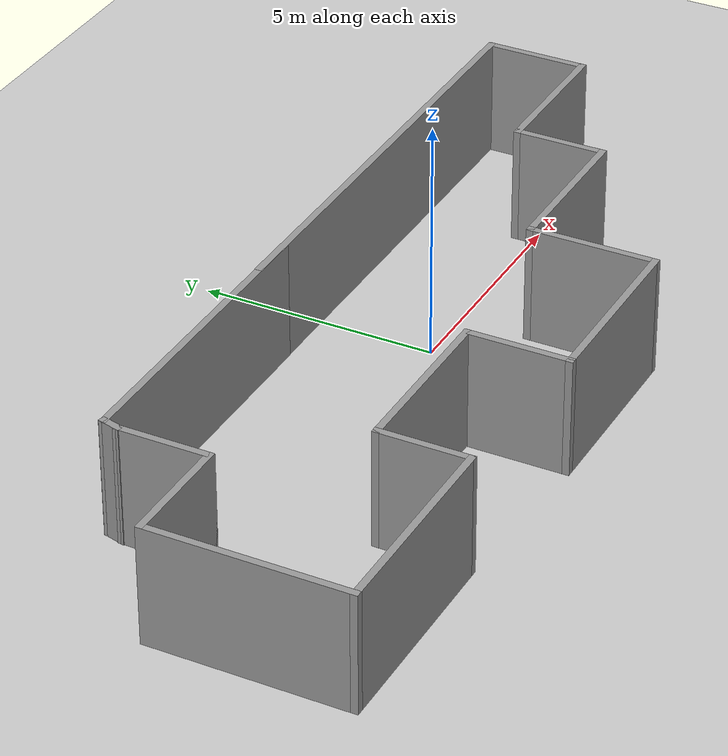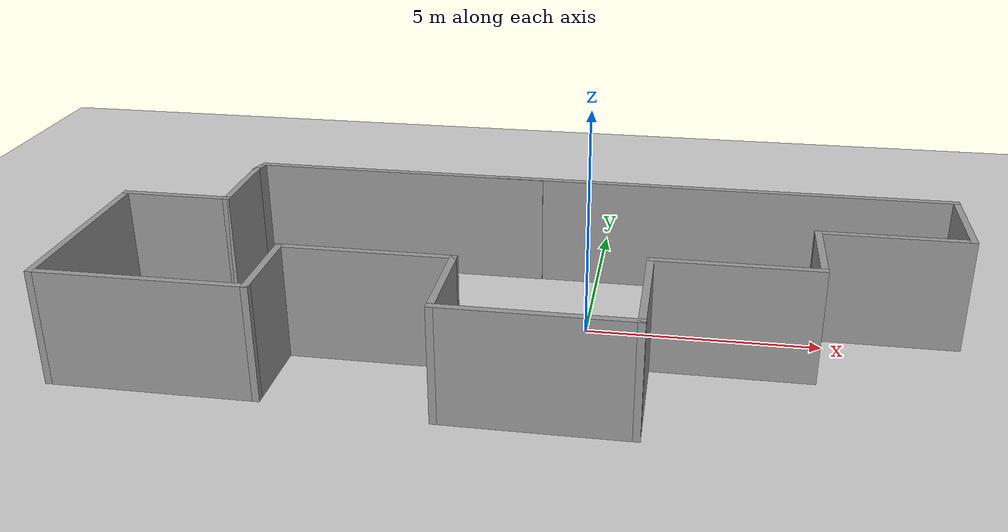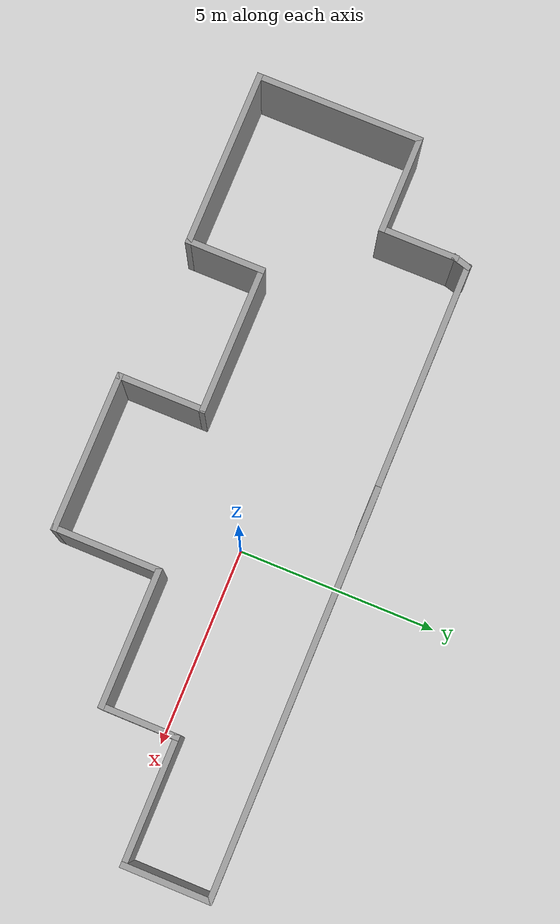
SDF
<sdf version="1.6">
 <world name="default">
  <light name="sun" type="directional">
   <pose>0 0 10 0 -0 0</pose>
   <diffuse>0.8 0.8 0.8 1</diffuse>
   <specular>0.2 0.2 0.2 1</specular>
   <attenuation>
    <range>1000</range>
    <constant>0.9</constant>
    <linear>0.01</linear>
    <quadratic>0.001</quadratic>
   </attenuation>
   <direction>-0.5 0.1 -0.9</direction>
  </light>
  <model name="ground_plane">
   <static>1</static>
   <link name="link">
    <collision name="collision">
     <geometry><plane><normal>0 0 1</normal><size>100 100</size></plane></geometry>
     <surface>
      <contact><collide_bitmask>65535</collide_bitmask></contact>
      <friction><ode><mu>100</mu><mu2>50</mu2></ode></friction>
     </surface>
    </collision>
    <visual name="visual">
     <cast_shadows>0</cast_shadows>
     <geometry><plane><normal>0 0 1</normal><size>100 100</size></plane></geometry>
     <material>
      <script><uri>file://media/materials/scripts/gazebo.material</uri><name>Gazebo/Grey</name></script>
     </material>
    </visual>
   </link>
  </model>
  <gravity>0 0 -9.8</gravity>
  <magnetic_field>6e-06 2.3e-05 -4.2e-05</magnetic_field>
  <atmosphere type="adiabatic"/>
  <physics name="default_physics" default="0" type="ode">
   <max_step_size>0.001</max_step_size>
   <real_time_factor>1</real_time_factor>
   <real_time_update_rate>1000</real_time_update_rate>
  </physics>
  <scene><ambient>0.4 0.4 0.4 1</ambient><background>0.7 0.7 0.7 1</background><shadows>1</shadows></scene>
  <spherical_coordinates>
   <surface_model>EARTH_WGS84</surface_model>
   <latitude_deg>0</latitude_deg>
   <longitude_deg>0</longitude_deg>
   <elevation>0</elevation>
   <heading_deg>0</heading_deg>
  </spherical_coordinates>
  <model name="Untitled">
   <pose>-1.305 -0.776915 0 0 -0 0</pose>
   <link name="Wall_0">
    <collision name="Wall_0_Collision">
     <geometry><box><size>10.25 0.15 2.5</size></box></geometry>
     <pose>0 0 1.25 0 -0 0</pose>
    </collision>
    <visual name="Wall_0_Visual">
     <pose>0 0 1.25 0 -0 0</pose>
     <geometry><box><size>10.25 0.15 2.5</size></box></geometry>
     <material>
      <script><uri>file://media/materials/scripts/gazebo.material</uri><name>Gazebo/Grey</name></script>
      <ambient>1 1 1 1</ambient>
     </material>
     <meta><layer>0</layer></meta>
    </visual>
    <pose>4.075 3.27253 0 0 -0 0</pose>
   </link>
   <link name="Wall_1">
    <collision name="Wall_1_Collision">
     <geometry><box><size>2.25 0.15 2.5</size></box></geometry>
     <pose>0 0 1.25 0 -0 0</pose>
    </collision>
    <visual name="Wall_1_Visual">
     <pose>0 0 1.25 0 -0 0</pose>
     <geometry><box><size>2.25 0.15 2.5</size></box></geometry>
     <material>
      <script><uri>file://media/materials/scripts/gazebo.material</uri><name>Gazebo/Grey</name></script>
      <ambient>1 1 1 1</ambient>
     </material>
     <meta><layer>0</layer></meta>
    </visual>
    <pose>9.125 2.22254 0 0 0 -1.5708</pose>
   </link>
   <link name="Wall_10">
    <collision name="Wall_10_Collision">
     <geometry><box><size>4.5 0.15 2.5</size></box></geometry>
     <pose>0 0 1.25 0 -0 0</pose>
    </collision>
    <visual name="Wall_10_Visual">
     <pose>0 0 1.25 0 -0 0</pose>
     <geometry><box><size>4.5 0.15 2.5</size></box></geometry>
     <material>
      <script><uri>file://media/materials/scripts/gazebo.material</uri><name>Gazebo/Grey</name></script>
      <ambient>1 1 1 1</ambient>
     </material>
     <meta><layer>0</layer></meta>
    </visual>
    <pose>-6.95 -3.02746 0 0 -0 3.14159</pose>
   </link>
   <link name="Wall_11">
    <collision name="Wall_11_Collision">
     <geometry><box><size>4.25 0.15 2.5</size></box></geometry>
     <pose>0 0 1.25 0 -0 0</pose>
    </collision>
    <visual name="Wall_11_Visual">
     <pose>0 0 1.25 0 -0 0</pose>
     <geometry><box><size>4.25 0.15 2.5</size></box></geometry>
     <material>
      <script><uri>file://media/materials/scripts/gazebo.material</uri><name>Gazebo/Grey</name></script>
      <ambient>1 1 1 1</ambient>
     </material>
     <meta><layer>0</layer></meta>
    </visual>
    <pose>-9.125 -0.977465 0 0 -0 1.5708</pose>
   </link>
   <link name="Wall_12">
    <collision name="Wall_12_Collision">
     <geometry><box><size>2.5 0.15 2.5</size></box></geometry>
     <pose>0 0 1.25 0 -0 0</pose>
    </collision>
    <visual name="Wall_12_Visual">
     <pose>0 0 1.25 0 -0 0</pose>
     <geometry><box><size>2.5 0.15 2.5</size></box></geometry>
     <material>
      <script><uri>file://media/materials/scripts/gazebo.material</uri><name>Gazebo/Grey</name></script>
      <ambient>1 1 1 1</ambient>
     </material>
     <meta><layer>0</layer></meta>
    </visual>
    <pose>-7.95 1.07254 0 0 -0 0</pose>
   </link>
   <link name="Wall_13">
    <collision name="Wall_13_Collision">
     <geometry><box><size>2 0.15 2.5</size></box></geometry>
     <pose>0 0 1.25 0 -0 0</pose>
    </collision>
    <visual name="Wall_13_Visual">
     <pose>0 0 1.25 0 -0 0</pose>
     <geometry><box><size>2 0.15 2.5</size></box></geometry>
     <material>
      <script><uri>file://media/materials/scripts/gazebo.material</uri><name>Gazebo/Grey</name></script>
      <ambient>1 1 1 1</ambient>
     </material>
     <meta><layer>0</layer></meta>
    </visual>
    <pose>-6.775 1.99754 0 0 -0 1.5708</pose>
   </link>
   <link name="Wall_14">
    <collision name="Wall_14_Collision">
     <geometry><box><size>0.5 0.15 2.5</size></box></geometry>
     <pose>0 0 1.25 0 -0 0</pose>
    </collision>
    <visual name="Wall_14_Visual">
     <pose>0 0 1.25 0 -0 0</pose>
     <geometry><box><size>0.5 0.15 2.5</size></box></geometry>
     <material>
      <script><uri>file://media/materials/scripts/gazebo.material</uri><name>Gazebo/Grey</name></script>
      <ambient>1 1 1 1</ambient>
     </material>
     <meta><layer>0</layer></meta>
    </visual>
    <pose>-6.72971 3.09157 0 0 -0 1.309</pose>
   </link>
   <link name="Wall_15">
    <collision name="Wall_15_Collision">
     <geometry><box><size>6.75 0.15 2.5</size></box></geometry>
     <pose>0 0 1.25 0 -0 0</pose>
    </collision>
    <visual name="Wall_15_Visual">
     <pose>0 0 1.25 0 -0 0</pose>
     <geometry><box><size>6.75 0.15 2.5</size></box></geometry>
     <material>
      <script><uri>file://media/materials/scripts/gazebo.material</uri><name>Gazebo/Grey</name></script>
      <ambient>1 1 1 1</ambient>
     </material>
     <meta><layer>0</layer></meta>
    </visual>
    <pose>-3.38441 3.26061 0 0 -0 0</pose>
   </link>
   <link name="Wall_2">
    <collision name="Wall_2_Collision">
     <geometry><box><size>3.25 0.15 2.5</size></box></geometry>
     <pose>0 0 1.25 0 -0 0</pose>
    </collision>
    <visual name="Wall_2_Visual">
     <pose>0 0 1.25 0 -0 0</pose>
     <geometry><box><size>3.25 0.15 2.5</size></box></geometry>
     <material>
      <script><uri>file://media/materials/scripts/gazebo.material</uri><name>Gazebo/Grey</name></script>
      <ambient>1 1 1 1</ambient>
     </material>
     <meta><layer>0</layer></meta>
    </visual>
    <pose>7.575 1.17254 0 0 -0 3.14159</pose>
   </link>
   <link name="Wall_3">
    <collision name="Wall_3_Collision">
     <geometry><box><size>2 0.15 2.5</size></box></geometry>
     <pose>0 0 1.25 0 -0 0</pose>
    </collision>
    <visual name="Wall_3_Visual">
     <pose>0 0 1.25 0 -0 0</pose>
     <geometry><box><size>2 0.15 2.5</size></box></geometry>
     <material>
      <script><uri>file://media/materials/scripts/gazebo.material</uri><name>Gazebo/Grey</name></script>
      <ambient>1 1 1 1</ambient>
     </material>
     <meta><layer>0</layer></meta>
    </visual>
    <pose>6.025 0.247535 0 0 0 -1.5708</pose>
   </link>
   <link name="Wall_4">
    <collision name="Wall_4_Collision">
     <geometry><box><size>3.5 0.15 2.5</size></box></geometry>
     <pose>0 0 1.25 0 -0 0</pose>
    </collision>
    <visual name="Wall_4_Visual">
     <pose>0 0 1.25 0 -0 0</pose>
     <geometry><box><size>3.5 0.15 2.5</size></box></geometry>
     <material>
      <script><uri>file://media/materials/scripts/gazebo.material</uri><name>Gazebo/Grey</name></script>
      <ambient>1 1 1 1</ambient>
     </material>
     <meta><layer>0</layer></meta>
    </visual>
    <pose>4.35 -0.677465 0 0 -0 3.14159</pose>
   </link>
   <link name="Wall_5">
    <collision name="Wall_5_Collision">
     <geometry><box><size>2.75 0.15 2.5</size></box></geometry>
     <pose>0 0 1.25 0 -0 0</pose>
    </collision>
    <visual name="Wall_5_Visual">
     <pose>0 0 1.25 0 -0 0</pose>
     <geometry><box><size>2.75 0.15 2.5</size></box></geometry>
     <material>
      <script><uri>file://media/materials/scripts/gazebo.material</uri><name>Gazebo/Grey</name></script>
      <ambient>1 1 1 1</ambient>
     </material>
     <meta><layer>0</layer></meta>
    </visual>
    <pose>2.675 -1.97747 0 0 0 -1.5708</pose>
   </link>
   <link name="Wall_6">
    <collision name="Wall_6_Collision">
     <geometry><box><size>4 0.15 2.5</size></box></geometry>
     <pose>0 0 1.25 0 -0 0</pose>
    </collision>
    <visual name="Wall_6_Visual">
     <pose>0 0 1.25 0 -0 0</pose>
     <geometry><box><size>4 0.15 2.5</size></box></geometry>
     <material>
      <script><uri>file://media/materials/scripts/gazebo.material</uri><name>Gazebo/Grey</name></script>
      <ambient>1 1 1 1</ambient>
     </material>
     <meta><layer>0</layer></meta>
    </visual>
    <pose>0.75 -3.27746 0 0 -0 3.14159</pose>
   </link>
   <link name="Wall_7">
    <collision name="Wall_7_Collision">
     <geometry><box><size>2.25 0.15 2.5</size></box></geometry>
     <pose>0 0 1.25 0 -0 0</pose>
    </collision>
    <visual name="Wall_7_Visual">
     <pose>0 0 1.25 0 -0 0</pose>
     <geometry><box><size>2.25 0.15 2.5</size></box></geometry>
     <material>
      <script><uri>file://media/materials/scripts/gazebo.material</uri><name>Gazebo/Grey</name></script>
      <ambient>1 1 1 1</ambient>
     </material>
     <meta><layer>0</layer></meta>
    </visual>
    <pose>-1.175 -2.22747 0 0 -0 1.5708</pose>
   </link>
   <link name="Wall_8">
    <collision name="Wall_8_Collision">
     <geometry><box><size>3.75 0.15 2.5</size></box></geometry>
     <pose>0 0 1.25 0 -0 0</pose>
    </collision>
    <visual name="Wall_8_Visual">
     <pose>0 0 1.25 0 -0 0</pose>
     <geometry><box><size>3.75 0.15 2.5</size></box></geometry>
     <material>
      <script><uri>file://media/materials/scripts/gazebo.material</uri><name>Gazebo/Grey</name></script>
      <ambient>1 1 1 1</ambient>
     </material>
     <meta><layer>0</layer></meta>
    </visual>
    <pose>-2.975 -1.17746 0 0 -0 3.14159</pose>
   </link>
   <link name="Wall_9">
    <collision name="Wall_9_Collision">
     <geometry><box><size>2 0.15 2.5</size></box></geometry>
     <pose>0 0 1.25 0 -0 0</pose>
    </collision>
    <visual name="Wall_9_Visual">
     <pose>0 0 1.25 0 -0 0</pose>
     <geometry><box><size>2 0.15 2.5</size></box></geometry>
     <material>
      <script><uri>file://media/materials/scripts/gazebo.material</uri><name>Gazebo/Grey</name></script>
      <ambient>1 1 1 1</ambient>
     </material>
     <meta><layer>0</layer></meta>
    </visual>
    <pose>-4.775 -2.10247 0 0 0 -1.5708</pose>
   </link>
   <static>1</static>
  </model>
 </world>
</sdf>
